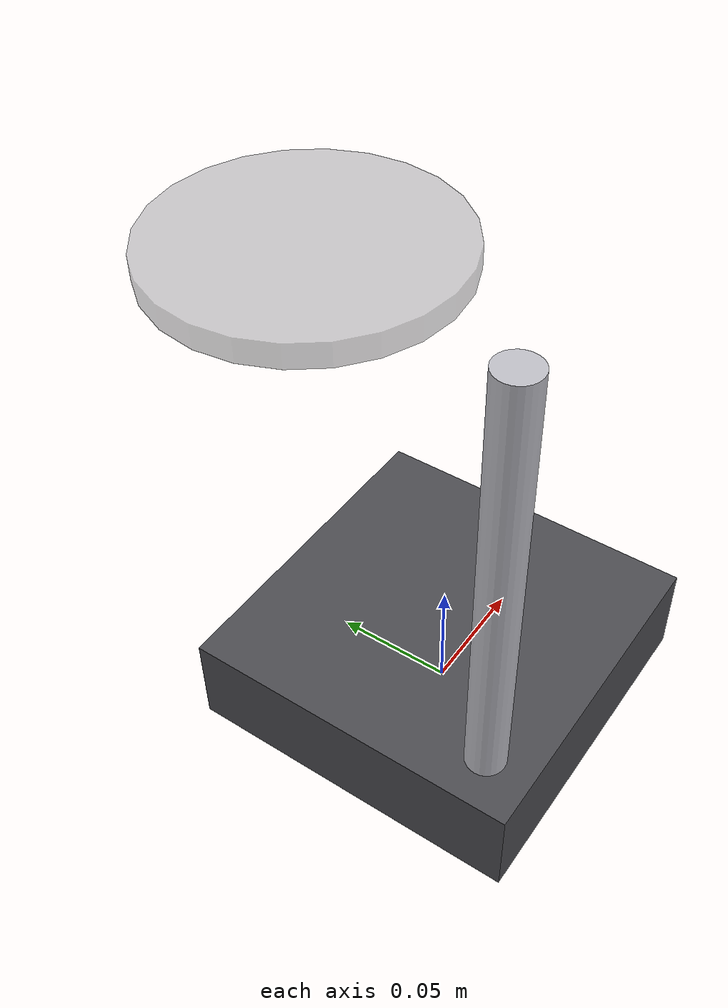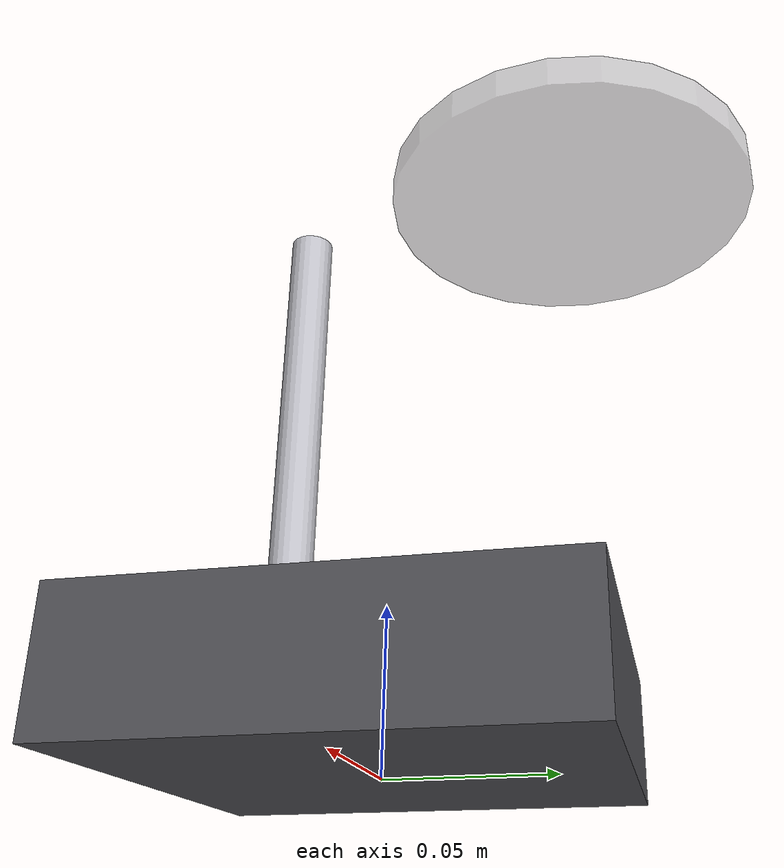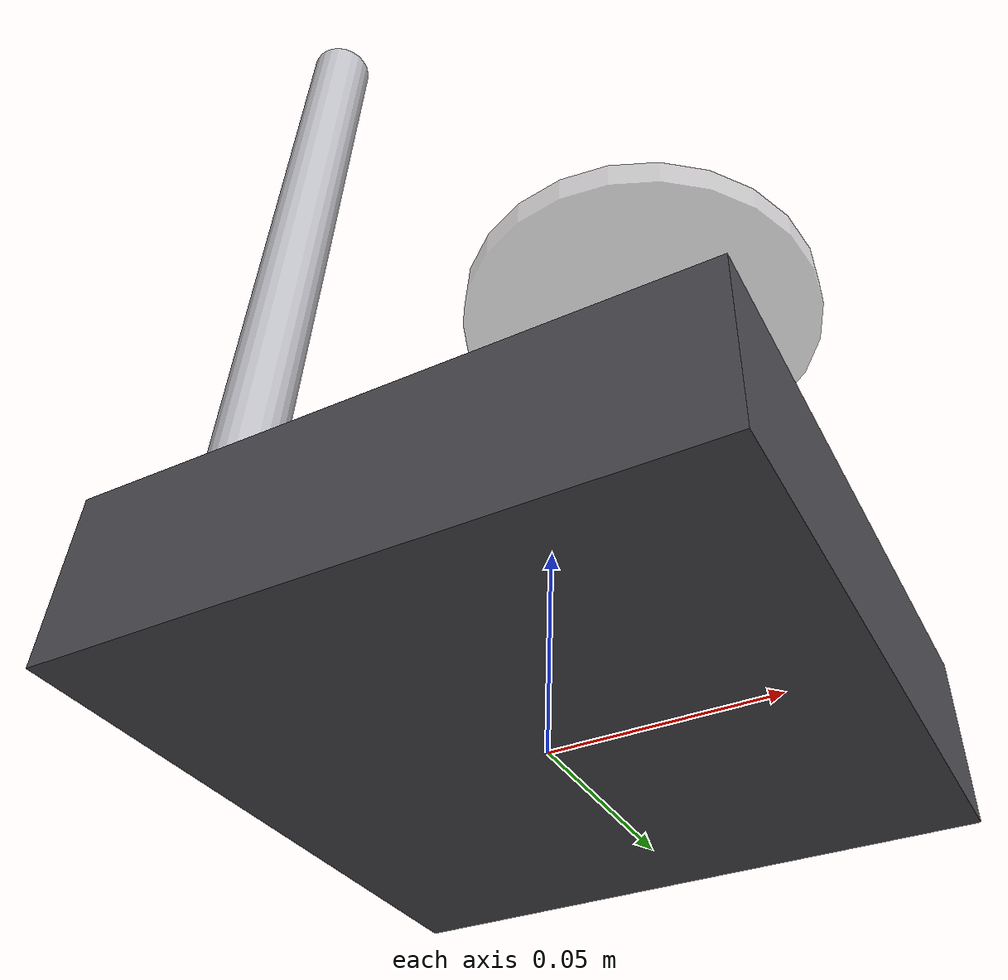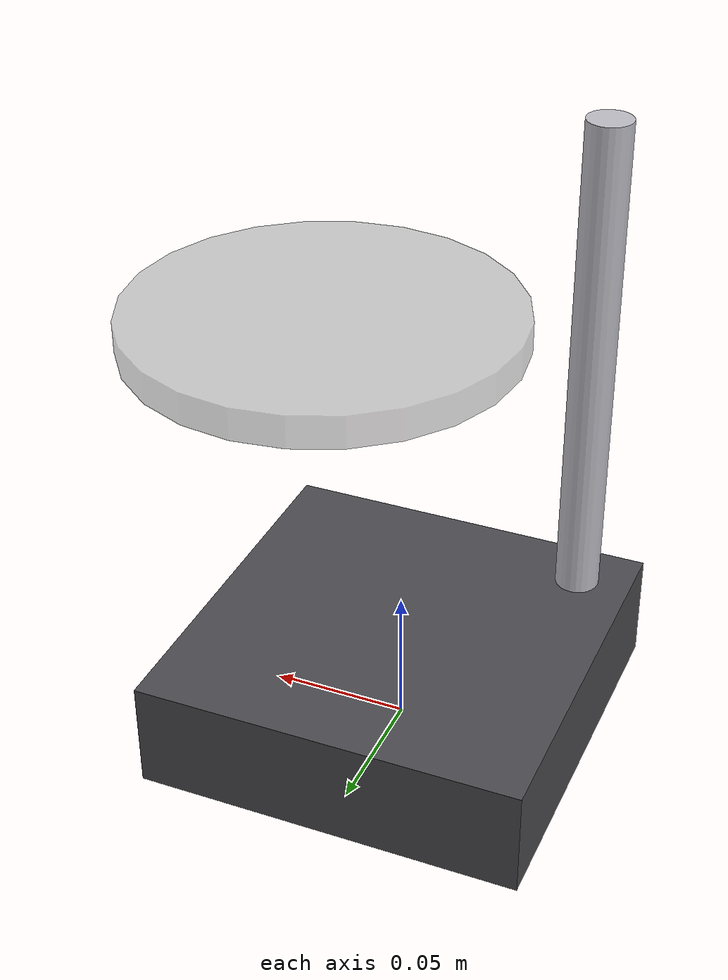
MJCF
<?xml version="1.0" encoding="utf-8"?>
<mujoco model="sieve_shaker">
  <compiler angle="radian" autolimits="true"/>
  <default>
    <default class="body"><geom contype="1" conaffinity="1"/></default>
  </default>
  <worldbody>
    <body name="base">
      <geom type="box" size="0.07 0.07 0.02" pos="0 0 0.02" rgba="0.3 0.3 0.32 1" class="body"/>
      <geom type="cylinder" size="0.008 0.10" pos="-0.05 -0.05 0.12" rgba="0.75 0.75 0.78 1" class="body"/>
      <body name="sieve_lid" pos="0 0.06 0.19">
        <joint name="sieve_lid_joint" type="hinge" axis="1 0 0" range="0 1.4" damping="0.3" frictionloss="0.3"/>
  <geom type="cylinder" size="0.06 0.005" pos="0 0 0" rgba="0.6 0.6 0.62 0.5" class="body"/>
      </body>
    </body>
  </worldbody>
</mujoco>
